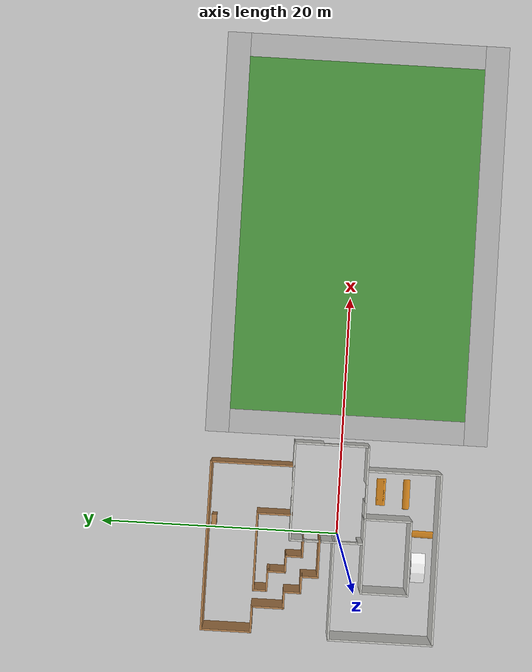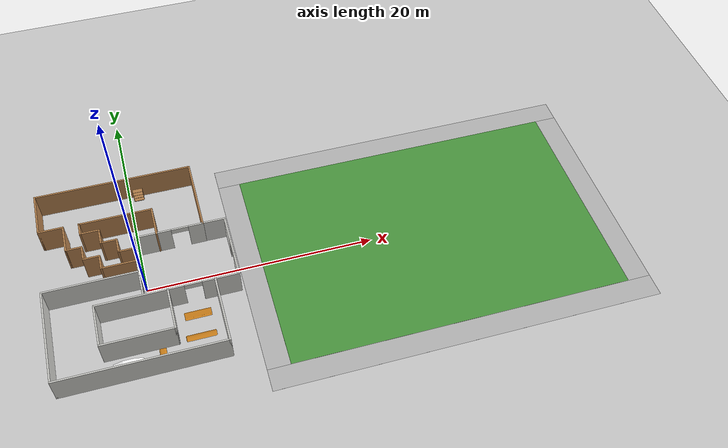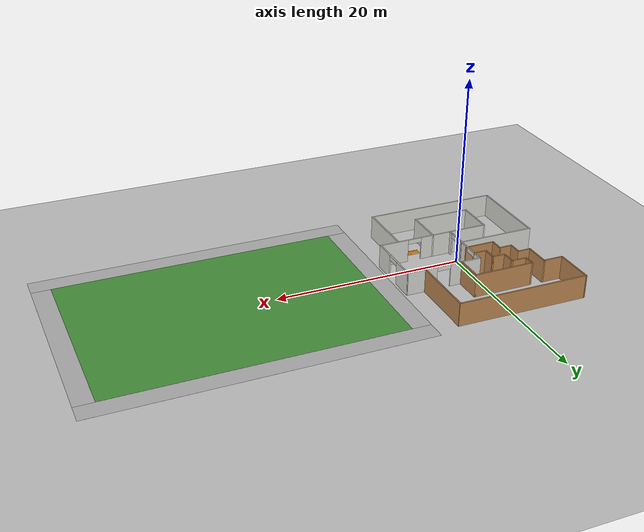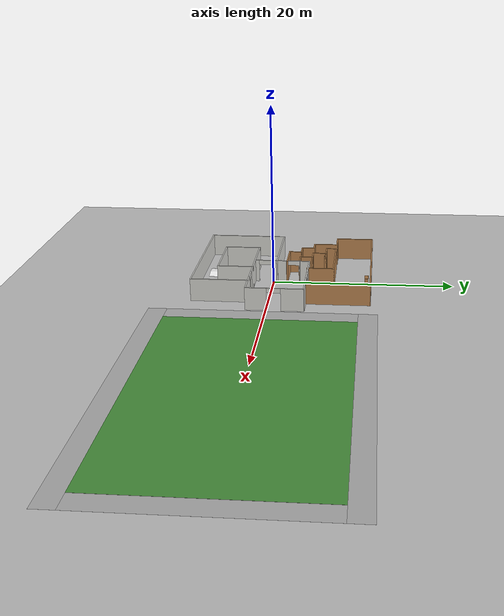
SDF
<sdf version="1.7">
 <world name="default">
  <light name="sun" type="directional">
   <pose>0 0 10 0 -0 0</pose>
   <diffuse>0.8 0.8 0.8 1</diffuse>
   <specular>0.2 0.2 0.2 1</specular>
   <attenuation>
    <range>1000</range>
    <constant>0.9</constant>
    <linear>0.01</linear>
    <quadratic>0.001</quadratic>
   </attenuation>
   <direction>-0.5 0.1 -0.9</direction>
   <spot><inner_angle>0</inner_angle><outer_angle>0</outer_angle><falloff>0</falloff></spot>
  </light>
  <model name="ground_plane">
   <static>1</static>
   <link name="link">
    <collision name="collision">
     <geometry><plane><normal>0 0 1</normal><size>100 100</size></plane></geometry>
     <surface><friction><ode><mu>100</mu><mu2>50</mu2></ode></friction></surface>
    </collision>
    <visual name="visual">
     <cast_shadows>0</cast_shadows>
     <geometry><plane><normal>0 0 1</normal><size>100 100</size></plane></geometry>
     <material>
      <script><uri>file://media/materials/scripts/gazebo.material</uri><name>Gazebo/Grey</name></script>
     </material>
    </visual>
   </link>
  </model>
  <gravity>0 0 -9.8</gravity>
  <magnetic_field>6e-06 2.3e-05 -4.2e-05</magnetic_field>
  <atmosphere type="adiabatic"/>
  <physics type="ode">
   <max_step_size>0.001</max_step_size>
   <real_time_factor>1</real_time_factor>
   <real_time_update_rate>1000</real_time_update_rate>
  </physics>
  <scene><ambient>0.4 0.4 0.4 1</ambient><background>0.7 0.7 0.7 1</background><shadows>1</shadows></scene>
  <audio><device>default</device></audio>
  <spherical_coordinates>
   <surface_model>EARTH_WGS84</surface_model>
   <latitude_deg>0</latitude_deg>
   <longitude_deg>0</longitude_deg>
   <elevation>0</elevation>
   <heading_deg>0</heading_deg>
  </spherical_coordinates>
  <model name="fourth_try">
   <pose>-0.26052 1.36945 0 0 -0 0</pose>
   <link name="Wall_0">
    <pose>2.00344 -3.45856 0 0 -0 0</pose>
    <visual name="Wall_0_Visual_0">
     <pose>-2.3549 0 1.25 0 -0 0</pose>
     <geometry><box><size>7.5402 0.15 2.5</size></box></geometry>
     <material>
      <script><uri>file://media/materials/scripts/gazebo.material</uri><name>Gazebo/CeilingTiled</name></script>
      <ambient>1 1 1 1</ambient>
     </material>
     <meta><layer>0</layer></meta>
    </visual>
    <collision name="Wall_0_Collision_0">
     <geometry><box><size>7.5402 0.15 2.5</size></box></geometry>
     <pose>-2.3549 0 1.25 0 -0 0</pose>
    </collision>
    <visual name="Wall_0_Visual_1">
     <pose>4.5201 0 1.25 0 -0 0</pose>
     <geometry><box><size>3.2098 0.15 2.5</size></box></geometry>
     <material>
      <script><uri>file://media/materials/scripts/gazebo.material</uri><name>Gazebo/CeilingTiled</name></script>
      <ambient>1 1 1 1</ambient>
     </material>
     <meta><layer>0</layer></meta>
    </visual>
    <collision name="Wall_0_Collision_1">
     <geometry><box><size>3.2098 0.15 2.5</size></box></geometry>
     <pose>4.5201 0 1.25 0 -0 0</pose>
    </collision>
    <visual name="Wall_0_Visual_2">
     <pose>2.1652 0 2.25 0 -0 0</pose>
     <geometry><box><size>1.5 0.15 0.5</size></box></geometry>
     <material>
      <script><uri>file://media/materials/scripts/gazebo.material</uri><name>Gazebo/CeilingTiled</name></script>
      <ambient>1 1 1 1</ambient>
     </material>
     <meta><layer>0</layer></meta>
    </visual>
    <collision name="Wall_0_Collision_2">
     <geometry><box><size>1.5 0.15 0.5</size></box></geometry>
     <pose>2.1652 0 2.25 0 -0 0</pose>
    </collision>
   </link>
   <link name="Wall_1">
    <pose>8.05344 -0.408558 0 0 -0 1.5708</pose>
    <visual name="Wall_1_Visual_0">
     <pose>-1.98733 0 1.25 0 -0 0</pose>
     <geometry><box><size>2.27533 0.15 2.5</size></box></geometry>
     <material>
      <script><uri>file://media/materials/scripts/gazebo.material</uri><name>Gazebo/CeilingTiled</name></script>
      <ambient>1 1 1 1</ambient>
     </material>
     <meta><layer>0</layer></meta>
    </visual>
    <collision name="Wall_1_Collision_0">
     <geometry><box><size>2.27533 0.15 2.5</size></box></geometry>
     <pose>-1.98733 0 1.25 0 -0 0</pose>
    </collision>
    <visual name="Wall_1_Visual_1">
     <pose>1.88767 0 1.25 0 -0 0</pose>
     <geometry><box><size>2.47467 0.15 2.5</size></box></geometry>
     <material>
      <script><uri>file://media/materials/scripts/gazebo.material</uri><name>Gazebo/CeilingTiled</name></script>
      <ambient>1 1 1 1</ambient>
     </material>
     <meta><layer>0</layer></meta>
    </visual>
    <collision name="Wall_1_Collision_1">
     <geometry><box><size>2.47467 0.15 2.5</size></box></geometry>
     <pose>1.88767 0 1.25 0 -0 0</pose>
    </collision>
    <visual name="Wall_1_Visual_2">
     <pose>-0.099669 0 2.25 0 -0 0</pose>
     <geometry><box><size>1.5 0.15 0.5</size></box></geometry>
     <material>
      <script><uri>file://media/materials/scripts/gazebo.material</uri><name>Gazebo/CeilingTiled</name></script>
      <ambient>1 1 1 1</ambient>
     </material>
     <meta><layer>0</layer></meta>
    </visual>
    <collision name="Wall_1_Collision_2">
     <geometry><box><size>1.5 0.15 0.5</size></box></geometry>
     <pose>-0.099669 0 2.25 0 -0 0</pose>
    </collision>
   </link>
   <link name="Wall_10">
    <collision name="Wall_10_Collision">
     <geometry><box><size>2.25 0.15 2.5</size></box></geometry>
     <pose>0 0 1.25 0 -0 0</pose>
    </collision>
    <visual name="Wall_10_Visual">
     <pose>0 0 1.25 0 -0 0</pose>
     <geometry><box><size>2.25 0.15 2.5</size></box></geometry>
     <material>
      <script><uri>file://media/materials/scripts/gazebo.material</uri><name>Gazebo/Wood</name></script>
      <ambient>1 1 1 1</ambient>
     </material>
     <meta><layer>0</layer></meta>
    </visual>
    <pose>-6.71872 5.47939 0 0 -0 0</pose>
   </link>
   <link name="Wall_11">
    <collision name="Wall_11_Collision">
     <geometry><box><size>2.75 0.15 2.5</size></box></geometry>
     <pose>0 0 1.25 0 -0 0</pose>
    </collision>
    <visual name="Wall_11_Visual">
     <pose>0 0 1.25 0 -0 0</pose>
     <geometry><box><size>2.75 0.15 2.5</size></box></geometry>
     <material>
      <script><uri>file://media/materials/scripts/gazebo.material</uri><name>Gazebo/Wood</name></script>
      <ambient>1 1 1 1</ambient>
     </material>
     <meta><layer>0</layer></meta>
    </visual>
    <pose>-5.66872 4.17939 0 0 -0 -1.5708</pose>
   </link>
   <link name="Wall_12">
    <collision name="Wall_12_Collision">
     <geometry><box><size>1.5 0.15 2.5</size></box></geometry>
     <pose>0 0 1.25 0 -0 0</pose>
    </collision>
    <visual name="Wall_12_Visual">
     <pose>0 0 1.25 0 -0 0</pose>
     <geometry><box><size>1.5 0.15 2.5</size></box></geometry>
     <material>
      <script><uri>file://media/materials/scripts/gazebo.material</uri><name>Gazebo/Wood</name></script>
      <ambient>1 1 1 1</ambient>
     </material>
     <meta><layer>0</layer></meta>
    </visual>
    <pose>-4.99372 2.87939 0 0 -0 0</pose>
   </link>
   <link name="Wall_14">
    <collision name="Wall_14_Collision">
     <geometry><box><size>1.5 0.15 2.5</size></box></geometry>
     <pose>0 0 1.25 0 -0 0</pose>
    </collision>
    <visual name="Wall_14_Visual">
     <pose>0 0 1.25 0 -0 0</pose>
     <geometry><box><size>1.5 0.15 2.5</size></box></geometry>
     <material>
      <script><uri>file://media/materials/scripts/gazebo.material</uri><name>Gazebo/Wood</name></script>
      <ambient>1 1 1 1</ambient>
     </material>
     <meta><layer>0</layer></meta>
    </visual>
    <pose>-4.31872 2.20439 0 0 -0 -1.5708</pose>
   </link>
   <link name="Wall_15">
    <collision name="Wall_15_Collision">
     <geometry><box><size>1.5 0.15 2.5</size></box></geometry>
     <pose>0 0 1.25 0 -0 0</pose>
    </collision>
    <visual name="Wall_15_Visual">
     <pose>0 0 1.25 0 -0 0</pose>
     <geometry><box><size>1.5 0.15 2.5</size></box></geometry>
     <material>
      <script><uri>file://media/materials/scripts/gazebo.material</uri><name>Gazebo/Wood</name></script>
      <ambient>1 1 1 1</ambient>
     </material>
     <meta><layer>0</layer></meta>
    </visual>
    <pose>-3.64372 1.52939 0 0 -0 0</pose>
   </link>
   <link name="Wall_16">
    <collision name="Wall_16_Collision">
     <geometry><box><size>1.5 0.15 2.5</size></box></geometry>
     <pose>0 0 1.25 0 -0 0</pose>
    </collision>
    <visual name="Wall_16_Visual">
     <pose>0 0 1.25 0 -0 0</pose>
     <geometry><box><size>1.5 0.15 2.5</size></box></geometry>
     <material>
      <script><uri>file://media/materials/scripts/gazebo.material</uri><name>Gazebo/Wood</name></script>
      <ambient>1 1 1 1</ambient>
     </material>
     <meta><layer>0</layer></meta>
    </visual>
    <pose>-2.96872 0.854388 0 0 -0 -1.5708</pose>
   </link>
   <link name="Wall_17">
    <collision name="Wall_17_Collision">
     <geometry><box><size>3.25 0.15 2.5</size></box></geometry>
     <pose>0 0 1.25 0 -0 0</pose>
    </collision>
    <visual name="Wall_17_Visual">
     <pose>0 0 1.25 0 -0 0</pose>
     <geometry><box><size>3.25 0.15 2.5</size></box></geometry>
     <material>
      <script><uri>file://media/materials/scripts/gazebo.material</uri><name>Gazebo/Wood</name></script>
      <ambient>1 1 1 1</ambient>
     </material>
     <meta><layer>0</layer></meta>
    </visual>
    <pose>-1.41872 0.179389 0 0 -0 0</pose>
   </link>
   <link name="Wall_2">
    <collision name="Wall_2_Collision">
     <geometry><box><size>2.08803 0.15 2.5</size></box></geometry>
     <pose>0 0 1.25 0 -0 0</pose>
    </collision>
    <visual name="Wall_2_Visual">
     <pose>0 0 1.25 0 -0 0</pose>
     <geometry><box><size>2.08803 0.15 2.5</size></box></geometry>
     <material>
      <script><uri>file://media/materials/scripts/gazebo.material</uri><name>Gazebo/CeilingTiled</name></script>
      <ambient>1 1 1 1</ambient>
     </material>
     <meta><layer>0</layer></meta>
    </visual>
    <pose>7.08446 2.65024 0 0 -0 3.13252</pose>
   </link>
   <link name="Wall_22">
    <pose>3.06549 2.64144 0 0 -0 3.14159</pose>
    <visual name="Wall_22_Visual_0">
     <pose>-2.44462 0 1.25 0 -0 0</pose>
     <geometry><box><size>1.36077 0.15 2.5</size></box></geometry>
     <material>
      <script><uri>file://media/materials/scripts/gazebo.material</uri><name>Gazebo/CeilingTiled</name></script>
      <ambient>1 1 1 1</ambient>
     </material>
     <meta><layer>0</layer></meta>
    </visual>
    <collision name="Wall_22_Collision_0">
     <geometry><box><size>1.36077 0.15 2.5</size></box></geometry>
     <pose>-2.44462 0 1.25 0 -0 0</pose>
    </collision>
    <visual name="Wall_22_Visual_1">
     <pose>1.43038 0 1.25 0 -0 0</pose>
     <geometry><box><size>3.38923 0.15 2.5</size></box></geometry>
     <material>
      <script><uri>file://media/materials/scripts/gazebo.material</uri><name>Gazebo/CeilingTiled</name></script>
      <ambient>1 1 1 1</ambient>
     </material>
     <meta><layer>0</layer></meta>
    </visual>
    <collision name="Wall_22_Collision_1">
     <geometry><box><size>3.38923 0.15 2.5</size></box></geometry>
     <pose>1.43038 0 1.25 0 -0 0</pose>
    </collision>
    <visual name="Wall_22_Visual_2">
     <pose>-1.01423 0 2.25 0 -0 0</pose>
     <geometry><box><size>1.5 0.15 0.5</size></box></geometry>
     <material>
      <script><uri>file://media/materials/scripts/gazebo.material</uri><name>Gazebo/CeilingTiled</name></script>
      <ambient>1 1 1 1</ambient>
     </material>
     <meta><layer>0</layer></meta>
    </visual>
    <collision name="Wall_22_Collision_2">
     <geometry><box><size>1.5 0.15 0.5</size></box></geometry>
     <pose>-1.01423 0 2.25 0 -0 0</pose>
    </collision>
   </link>
   <link name="Wall_23">
    <collision name="Wall_23_Collision">
     <geometry><box><size>1.25 0.15 2.5</size></box></geometry>
     <pose>0 0 1.25 0 -0 0</pose>
    </collision>
    <visual name="Wall_23_Visual">
     <pose>0 0 1.25 0 -0 0</pose>
     <geometry><box><size>1.25 0.15 2.5</size></box></geometry>
     <material>
      <script><uri>file://media/materials/scripts/gazebo.material</uri><name>Gazebo/CeilingTiled</name></script>
      <ambient>1 1 1 1</ambient>
     </material>
     <meta><layer>0</layer></meta>
    </visual>
    <pose>0.01549 2.09144 0 0 -0 -1.5708</pose>
   </link>
   <link name="Wall_24">
    <collision name="Wall_24_Collision">
     <geometry><box><size>1.5 0.15 2.5</size></box></geometry>
     <pose>0 0 1.25 0 -0 0</pose>
    </collision>
    <visual name="Wall_24_Visual">
     <pose>0 0 1.25 0 -0 0</pose>
     <geometry><box><size>1.5 0.15 2.5</size></box></geometry>
     <material>
      <script><uri>file://media/materials/scripts/gazebo.material</uri><name>Gazebo/Wood</name></script>
      <ambient>1 1 1 1</ambient>
     </material>
     <meta><layer>0</layer></meta>
    </visual>
    <pose>-0.65951 1.54144 0 0 -0 3.14159</pose>
   </link>
   <link name="Wall_25">
    <collision name="Wall_25_Collision">
     <geometry><box><size>1.5 0.15 2.5</size></box></geometry>
     <pose>0 0 1.25 0 -0 0</pose>
    </collision>
    <visual name="Wall_25_Visual">
     <pose>0 0 1.25 0 -0 0</pose>
     <geometry><box><size>1.5 0.15 2.5</size></box></geometry>
     <material>
      <script><uri>file://media/materials/scripts/gazebo.material</uri><name>Gazebo/Wood</name></script>
      <ambient>1 1 1 1</ambient>
     </material>
     <meta><layer>0</layer></meta>
    </visual>
    <pose>-1.33451 2.21644 0 0 -0 1.5708</pose>
   </link>
   <link name="Wall_26">
    <collision name="Wall_26_Collision">
     <geometry><box><size>1.5 0.15 2.5</size></box></geometry>
     <pose>0 0 1.25 0 -0 0</pose>
    </collision>
    <visual name="Wall_26_Visual">
     <pose>0 0 1.25 0 -0 0</pose>
     <geometry><box><size>1.5 0.15 2.5</size></box></geometry>
     <material>
      <script><uri>file://media/materials/scripts/gazebo.material</uri><name>Gazebo/Wood</name></script>
      <ambient>1 1 1 1</ambient>
     </material>
     <meta><layer>0</layer></meta>
    </visual>
    <pose>-2.00951 2.89144 0 0 -0 3.14159</pose>
   </link>
   <link name="Wall_27">
    <collision name="Wall_27_Collision">
     <geometry><box><size>1.5 0.15 2.5</size></box></geometry>
     <pose>0 0 1.25 0 -0 0</pose>
    </collision>
    <visual name="Wall_27_Visual">
     <pose>0 0 1.25 0 -0 0</pose>
     <geometry><box><size>1.5 0.15 2.5</size></box></geometry>
     <material>
      <script><uri>file://media/materials/scripts/gazebo.material</uri><name>Gazebo/Wood</name></script>
      <ambient>1 1 1 1</ambient>
     </material>
     <meta><layer>0</layer></meta>
    </visual>
    <pose>-2.68451 3.56644 0 0 -0 1.5708</pose>
   </link>
   <link name="Wall_28">
    <collision name="Wall_28_Collision">
     <geometry><box><size>0.25 0.15 2.5</size></box></geometry>
     <pose>0 0 1.25 0 -0 0</pose>
    </collision>
    <visual name="Wall_28_Visual">
     <pose>0 0 1.25 0 -0 0</pose>
     <geometry><box><size>0.25 0.15 2.5</size></box></geometry>
     <material>
      <script><uri>file://media/materials/scripts/gazebo.material</uri><name>Gazebo/Wood</name></script>
      <ambient>1 1 1 1</ambient>
     </material>
     <meta><layer>0</layer></meta>
    </visual>
    <pose>-2.68451 4.29144 0 0 -0 1.5708</pose>
   </link>
   <link name="Wall_29">
    <collision name="Wall_29_Collision">
     <geometry><box><size>1.75 0.15 2.5</size></box></geometry>
     <pose>0 0 1.25 0 -0 0</pose>
    </collision>
    <visual name="Wall_29_Visual">
     <pose>0 0 1.25 0 -0 0</pose>
     <geometry><box><size>1.75 0.15 2.5</size></box></geometry>
     <material>
      <script><uri>file://media/materials/scripts/gazebo.material</uri><name>Gazebo/Wood</name></script>
      <ambient>1 1 1 1</ambient>
     </material>
     <meta><layer>0</layer></meta>
    </visual>
    <pose>-3.48451 4.34144 0 0 -0 3.14159</pose>
   </link>
   <link name="Wall_30">
    <collision name="Wall_30_Collision">
     <geometry><box><size>1.25 0.15 2.5</size></box></geometry>
     <pose>0 0 1.25 0 -0 0</pose>
    </collision>
    <visual name="Wall_30_Visual">
     <pose>0 0 1.25 0 -0 0</pose>
     <geometry><box><size>1.25 0.15 2.5</size></box></geometry>
     <material>
      <script><uri>file://media/materials/scripts/gazebo.material</uri><name>Gazebo/Wood</name></script>
      <ambient>1 1 1 1</ambient>
     </material>
     <meta><layer>0</layer></meta>
    </visual>
    <pose>-4.28451 4.89144 0 0 -0 1.5708</pose>
   </link>
   <link name="Wall_31">
    <collision name="Wall_31_Collision">
     <geometry><box><size>6.5 0.15 2.5</size></box></geometry>
     <pose>0 0 1.25 0 -0 0</pose>
    </collision>
    <visual name="Wall_31_Visual">
     <pose>0 0 1.25 0 -0 0</pose>
     <geometry><box><size>6.5 0.15 2.5</size></box></geometry>
     <material>
      <script><uri>file://media/materials/scripts/gazebo.material</uri><name>Gazebo/Wood</name></script>
      <ambient>1 1 1 1</ambient>
     </material>
     <meta><layer>0</layer></meta>
    </visual>
    <pose>-1.10951 5.44144 0 0 -0 0</pose>
   </link>
   <link name="Wall_32">
    <collision name="Wall_32_Collision">
     <geometry><box><size>3 0.15 2.5</size></box></geometry>
     <pose>0 0 1.25 0 -0 0</pose>
    </collision>
    <visual name="Wall_32_Visual">
     <pose>0 0 1.25 0 -0 0</pose>
     <geometry><box><size>3 0.15 2.5</size></box></geometry>
     <material>
      <script><uri>file://media/materials/scripts/gazebo.material</uri><name>Gazebo/Wood</name></script>
      <ambient>1 1 1 1</ambient>
     </material>
     <meta><layer>0</layer></meta>
    </visual>
    <pose>2.06549 4.01644 0 0 -0 -1.5708</pose>
   </link>
   <link name="Wall_36">
    <pose>0.01549 -0.883558 0 0 -0 -1.5708</pose>
    <visual name="Wall_36_Visual_0">
     <pose>-2.46953 0 1.25 0 -0 0</pose>
     <geometry><box><size>0.060938 0.15 2.5</size></box></geometry>
     <material>
      <script><uri>file://media/materials/scripts/gazebo.material</uri><name>Gazebo/CeilingTiled</name></script>
      <ambient>1 1 1 1</ambient>
     </material>
     <meta><layer>0</layer></meta>
    </visual>
    <collision name="Wall_36_Collision_0">
     <geometry><box><size>0.060938 0.15 2.5</size></box></geometry>
     <pose>-2.46953 0 1.25 0 -0 0</pose>
    </collision>
    <visual name="Wall_36_Visual_1">
     <pose>-0.171653 0 1.25 0 -0 0</pose>
     <geometry><box><size>1.53482 0.15 2.5</size></box></geometry>
     <material>
      <script><uri>file://media/materials/scripts/gazebo.material</uri><name>Gazebo/CeilingTiled</name></script>
      <ambient>1 1 1 1</ambient>
     </material>
     <meta><layer>0</layer></meta>
    </visual>
    <collision name="Wall_36_Collision_1">
     <geometry><box><size>1.53482 0.15 2.5</size></box></geometry>
     <pose>-0.171653 0 1.25 0 -0 0</pose>
    </collision>
    <visual name="Wall_36_Visual_2">
     <pose>2.29788 0 1.25 0 -0 0</pose>
     <geometry><box><size>0.404244 0.15 2.5</size></box></geometry>
     <material>
      <script><uri>file://media/materials/scripts/gazebo.material</uri><name>Gazebo/CeilingTiled</name></script>
      <ambient>1 1 1 1</ambient>
     </material>
     <meta><layer>0</layer></meta>
    </visual>
    <collision name="Wall_36_Collision_2">
     <geometry><box><size>0.404244 0.15 2.5</size></box></geometry>
     <pose>2.29788 0 1.25 0 -0 0</pose>
    </collision>
    <visual name="Wall_36_Visual_3">
     <pose>-1.68906 0 2.25 0 -0 0</pose>
     <geometry><box><size>1.5 0.15 0.5</size></box></geometry>
     <material>
      <script><uri>file://media/materials/scripts/gazebo.material</uri><name>Gazebo/CeilingTiled</name></script>
      <ambient>1 1 1 1</ambient>
     </material>
     <meta><layer>0</layer></meta>
    </visual>
    <collision name="Wall_36_Collision_3">
     <geometry><box><size>1.5 0.15 0.5</size></box></geometry>
     <pose>-1.68906 0 2.25 0 -0 0</pose>
    </collision>
    <visual name="Wall_36_Visual_4">
     <pose>1.34576 0 2.25 0 -0 0</pose>
     <geometry><box><size>1.5 0.15 0.5</size></box></geometry>
     <material>
      <script><uri>file://media/materials/scripts/gazebo.material</uri><name>Gazebo/CeilingTiled</name></script>
      <ambient>1 1 1 1</ambient>
     </material>
     <meta><layer>0</layer></meta>
    </visual>
    <collision name="Wall_36_Collision_4">
     <geometry><box><size>1.5 0.15 0.5</size></box></geometry>
     <pose>1.34576 0 2.25 0 -0 0</pose>
    </collision>
   </link>
   <link name="Wall_38">
    <collision name="Wall_38_Collision">
     <geometry><box><size>8.25 0.15 2.5</size></box></geometry>
     <pose>0 0 1.25 0 -0 0</pose>
    </collision>
    <visual name="Wall_38_Visual">
     <pose>0 0 1.25 0 -0 0</pose>
     <geometry><box><size>8.25 0.15 2.5</size></box></geometry>
     <material>
      <script><uri>file://media/materials/scripts/gazebo.material</uri><name>Gazebo/CeilingTiled</name></script>
      <ambient>1 1 1 1</ambient>
     </material>
     <meta><layer>0</layer></meta>
    </visual>
    <pose>-4.00411 -0.979768 0 0 -0 3.14159</pose>
   </link>
   <link name="Wall_4">
    <collision name="Wall_4_Collision">
     <geometry><box><size>7 0.15 2.5</size></box></geometry>
     <pose>0 0 1.25 0 -0 0</pose>
    </collision>
    <visual name="Wall_4_Visual">
     <pose>0 0 1.25 0 -0 0</pose>
     <geometry><box><size>7 0.15 2.5</size></box></geometry>
     <material>
      <script><uri>file://media/materials/scripts/gazebo.material</uri><name>Gazebo/Wood</name></script>
      <ambient>1 1 1 1</ambient>
     </material>
     <meta><layer>0</layer></meta>
    </visual>
    <pose>6.11549 6.06644 0 0 -0 1.5708</pose>
   </link>
   <link name="Wall_40">
    <collision name="Wall_40_Collision">
     <geometry><box><size>8.75 0.15 2.5</size></box></geometry>
     <pose>0 0 1.25 0 -0 0</pose>
    </collision>
    <visual name="Wall_40_Visual">
     <pose>0 0 1.25 0 -0 0</pose>
     <geometry><box><size>8.75 0.15 2.5</size></box></geometry>
     <material>
      <script><uri>file://media/materials/scripts/gazebo.material</uri><name>Gazebo/CeilingTiled</name></script>
      <ambient>1 1 1 1</ambient>
     </material>
     <meta><layer>0</layer></meta>
    </visual>
    <pose>-8.05411 -5.27977 0 0 -0 -1.5708</pose>
   </link>
   <link name="Wall_41">
    <collision name="Wall_41_Collision">
     <geometry><box><size>14.25 0.15 2.5</size></box></geometry>
     <pose>0 0 1.25 0 -0 0</pose>
    </collision>
    <visual name="Wall_41_Visual">
     <pose>0 0 1.25 0 -0 0</pose>
     <geometry><box><size>14.25 0.15 2.5</size></box></geometry>
     <material>
      <script><uri>file://media/materials/scripts/gazebo.material</uri><name>Gazebo/CeilingTiled</name></script>
      <ambient>1 1 1 1</ambient>
     </material>
     <meta><layer>0</layer></meta>
    </visual>
    <pose>-1.00411 -9.57977 0 0 -0 0</pose>
   </link>
   <link name="Wall_42">
    <collision name="Wall_42_Collision">
     <geometry><box><size>6.25 0.15 2.5</size></box></geometry>
     <pose>0 0 1.25 0 -0 0</pose>
    </collision>
    <visual name="Wall_42_Visual">
     <pose>0 0 1.25 0 -0 0</pose>
     <geometry><box><size>6.25 0.15 2.5</size></box></geometry>
     <material>
      <script><uri>file://media/materials/scripts/gazebo.material</uri><name>Gazebo/CeilingTiled</name></script>
      <ambient>1 1 1 1</ambient>
     </material>
     <meta><layer>0</layer></meta>
    </visual>
    <pose>6.04589 -6.52977 0 0 -0 1.5708</pose>
   </link>
   <link name="Wall_44">
    <collision name="Wall_44_Collision">
     <geometry><box><size>4 0.15 2.5</size></box></geometry>
     <pose>0 0 1.25 0 -0 0</pose>
    </collision>
    <visual name="Wall_44_Visual">
     <pose>0 0 1.25 0 -0 0</pose>
     <geometry><box><size>4 0.15 2.5</size></box></geometry>
     <material>
      <script><uri>file://media/materials/scripts/gazebo.material</uri><name>Gazebo/CeilingTiled</name></script>
      <ambient>1 1 1 1</ambient>
     </material>
     <meta><layer>0</layer></meta>
    </visual>
    <pose>-4.04656 -5.38356 0 0 -0 -1.5708</pose>
   </link>
   <link name="Wall_45">
    <collision name="Wall_45_Collision">
     <geometry><box><size>6.25 0.15 2.5</size></box></geometry>
     <pose>0 0 1.25 0 -0 0</pose>
    </collision>
    <visual name="Wall_45_Visual">
     <pose>0 0 1.25 0 -0 0</pose>
     <geometry><box><size>6.25 0.15 2.5</size></box></geometry>
     <material>
      <script><uri>file://media/materials/scripts/gazebo.material</uri><name>Gazebo/CeilingTiled</name></script>
      <ambient>1 1 1 1</ambient>
     </material>
     <meta><layer>0</layer></meta>
    </visual>
    <pose>-0.996563 -7.30856 0 0 -0 0</pose>
   </link>
   <link name="Wall_46">
    <collision name="Wall_46_Collision">
     <geometry><box><size>4 0.15 2.5</size></box></geometry>
     <pose>0 0 1.25 0 -0 0</pose>
    </collision>
    <visual name="Wall_46_Visual">
     <pose>0 0 1.25 0 -0 0</pose>
     <geometry><box><size>4 0.15 2.5</size></box></geometry>
     <material>
      <script><uri>file://media/materials/scripts/gazebo.material</uri><name>Gazebo/CeilingTiled</name></script>
      <ambient>1 1 1 1</ambient>
     </material>
     <meta><layer>0</layer></meta>
    </visual>
    <pose>2.05344 -5.38356 0 0 -0 1.5708</pose>
   </link>
   <link name="Wall_5">
    <collision name="Wall_5_Collision">
     <geometry><box><size>14.0344 0.15 2.5</size></box></geometry>
     <pose>0 0 1.25 0 -0 0</pose>
    </collision>
    <visual name="Wall_5_Visual">
     <pose>0 0 1.25 0 -0 0</pose>
     <geometry><box><size>14.0344 0.15 2.5</size></box></geometry>
     <material>
      <script><uri>file://media/materials/scripts/gazebo.material</uri><name>Gazebo/Wood</name></script>
      <ambient>1 1 1 1</ambient>
     </material>
     <meta><layer>0</layer></meta>
    </visual>
    <pose>-0.826617 9.54421 0 0 -0 3.13652</pose>
   </link>
   <link name="Wall_9">
    <collision name="Wall_9_Collision">
     <geometry><box><size>4.25 0.15 2.5</size></box></geometry>
     <pose>0 0 1.25 0 -0 0</pose>
    </collision>
    <visual name="Wall_9_Visual">
     <pose>0 0 1.25 0 -0 0</pose>
     <geometry><box><size>4.25 0.15 2.5</size></box></geometry>
     <material>
      <script><uri>file://media/materials/scripts/gazebo.material</uri><name>Gazebo/Wood</name></script>
      <ambient>1 1 1 1</ambient>
     </material>
     <meta><layer>0</layer></meta>
    </visual>
    <pose>-7.76872 7.52939 0 0 -0 -1.5708</pose>
   </link>
   <static>1</static>
  </model>
  <model name="bookshelf">
   <static>1</static>
   <link name="link">
    <inertial><mass>1</mass></inertial>
    <collision name="back">
     <pose>0 0.005 0.6 0 -0 0</pose>
     <geometry><box><size>0.9 0.01 1.2</size></box></geometry>
    </collision>
    <visual name="visual1">
     <pose>0 0.005 0.6 0 -0 0</pose>
     <geometry><box><size>0.9 0.01 1.2</size></box></geometry>
     <material>
      <script><uri>file://media/materials/scripts/gazebo.material</uri><name>Gazebo/Wood</name></script>
     </material>
    </visual>
    <collision name="left_side">
     <pose>0.45 -0.195 0.6 0 -0 0</pose>
     <geometry><box><size>0.02 0.4 1.2</size></box></geometry>
    </collision>
    <visual name="visual2">
     <pose>0.45 -0.195 0.6 0 -0 0</pose>
     <geometry><box><size>0.02 0.4 1.2</size></box></geometry>
     <material>
      <script><uri>file://media/materials/scripts/gazebo.material</uri><name>Gazebo/Wood</name></script>
     </material>
    </visual>
    <collision name="right_side">
     <pose>-0.45 -0.195 0.6 0 -0 0</pose>
     <geometry><box><size>0.02 0.4 1.2</size></box></geometry>
    </collision>
    <visual name="visual3">
     <pose>-0.45 -0.195 0.6 0 -0 0</pose>
     <geometry><box><size>0.02 0.4 1.2</size></box></geometry>
     <material>
      <script><uri>file://media/materials/scripts/gazebo.material</uri><name>Gazebo/Wood</name></script>
     </material>
    </visual>
    <collision name="bottom">
     <pose>0 -0.195 0.03 0 -0 0</pose>
     <geometry><box><size>0.88 0.4 0.06</size></box></geometry>
    </collision>
    <visual name="visual4">
     <pose>0 -0.195 0.03 0 -0 0</pose>
     <geometry><box><size>0.88 0.4 0.06</size></box></geometry>
     <material>
      <script><uri>file://media/materials/scripts/gazebo.material</uri><name>Gazebo/Wood</name></script>
     </material>
    </visual>
    <collision name="top">
     <pose>0 -0.195 1.19 0 -0 0</pose>
     <geometry><box><size>0.88 0.4 0.02</size></box></geometry>
    </collision>
    <visual name="visual5">
     <pose>0 -0.195 1.19 0 -0 0</pose>
     <geometry><box><size>0.88 0.4 0.02</size></box></geometry>
     <material>
      <script><uri>file://media/materials/scripts/gazebo.material</uri><name>Gazebo/Wood</name></script>
     </material>
    </visual>
    <collision name="low_shelf">
     <pose>0 -0.195 0.43 0 -0 0</pose>
     <geometry><box><size>0.88 0.4 0.02</size></box></geometry>
    </collision>
    <visual name="visual6">
     <pose>0 -0.195 0.43 0 -0 0</pose>
     <geometry><box><size>0.88 0.4 0.02</size></box></geometry>
     <material>
      <script><uri>file://media/materials/scripts/gazebo.material</uri><name>Gazebo/Wood</name></script>
     </material>
    </visual>
    <collision name="high_shelf">
     <pose>0 -0.195 0.8 0 -0 0</pose>
     <geometry><box><size>0.88 0.4 0.02</size></box></geometry>
    </collision>
    <visual name="visual7">
     <pose>0 -0.195 0.8 0 -0 0</pose>
     <geometry><box><size>0.88 0.4 0.02</size></box></geometry>
     <material>
      <script><uri>file://media/materials/scripts/gazebo.material</uri><name>Gazebo/Wood</name></script>
     </material>
    </visual>
   </link>
   <pose>0.853272 10.6349 0 0 -0 0</pose>
  </model>
  <model name="robocup_3d_field">
   <static>1</static>
   <link name="field">
    <pose>0 0 0.01 0 -0 0</pose>
    <collision name="collision">
     <geometry><plane><normal>0 0 1</normal><size>30 20</size></plane></geometry>
     <surface><friction><ode><mu>100</mu><mu2>50</mu2></ode></friction></surface>
    </collision>
    <visual name="base1">
     <pose>0 11 0.001 0 -0 0</pose>
     <cast_shadows>0</cast_shadows>
     <geometry><plane><normal>0 0 1</normal><size>34 2</size></plane></geometry>
     <material>
      <script>
       <uri>model://robocup_3Dsim_field/materials/scripts/</uri>
       <uri>model://robocup_3Dsim_field/materials/textures/</uri>
       <name>RoboCup/FieldBorder</name>
      </script>
     </material>
    </visual>
    <visual name="base2">
     <pose>0 -11 0.001 0 -0 0</pose>
     <cast_shadows>0</cast_shadows>
     <geometry><plane><normal>0 0 1</normal><size>34 2</size></plane></geometry>
     <material>
      <script>
       <uri>model://robocup_3Dsim_field/materials/scripts/</uri>
       <uri>model://robocup_3Dsim_field/materials/textures/</uri>
       <name>RoboCup/FieldBorder</name>
      </script>
     </material>
    </visual>
    <visual name="base3">
     <pose>16 0 0.001 0 -0 0</pose>
     <cast_shadows>0</cast_shadows>
     <geometry><plane><normal>0 0 1</normal><size>2 20</size></plane></geometry>
     <material>
      <script>
       <uri>model://robocup_3Dsim_field/materials/scripts/</uri>
       <uri>model://robocup_3Dsim_field/materials/textures/</uri>
       <name>RoboCup/FieldBorder</name>
      </script>
     </material>
    </visual>
    <visual name="base4">
     <pose>-16 0 0.001 0 -0 0</pose>
     <cast_shadows>0</cast_shadows>
     <geometry><plane><normal>0 0 1</normal><size>2 20</size></plane></geometry>
     <material>
      <script>
       <uri>model://robocup_3Dsim_field/materials/scripts/</uri>
       <uri>model://robocup_3Dsim_field/materials/textures/</uri>
       <name>RoboCup/FieldBorder</name>
      </script>
     </material>
    </visual>
    <visual name="carpet">
     <cast_shadows>0</cast_shadows>
     <geometry><plane><normal>0 0 1</normal><size>30 20</size></plane></geometry>
     <material>
      <script>
       <uri>model://robocup_3Dsim_field/materials/scripts/</uri>
       <uri>model://robocup_3Dsim_field/materials/textures/</uri>
       <name>RoboCup/Grass</name>
      </script>
     </material>
    </visual>
   </link>
   <pose>25.1199 -0.310879 0 0 -0 0</pose>
  </model>
  <model name="speed_bump_2">
   <static>1</static>
   <link name="link">
    <collision name="collision">
     <geometry><mesh><uri>model://speed_bump_2//Bump_2_short.dae</uri></mesh></geometry>
     <surface><friction><ode><mu>0.9</mu><mu2>0.6</mu2></ode></friction></surface>
    </collision>
    <visual name="visual">
     <geometry><mesh><uri>model://speed_bump_2//Bump_2_short.dae</uri></mesh></geometry>
     <material><ambient>0.8 0.5 0.1 1</ambient><diffuse>0.8 0.5 0.1 1</diffuse></material>
    </visual>
   </link>
   <pose>0.098101 -6.05935 0 0 0 -1.58721</pose>
  </model>
  <model name="speed_bump_1_0">
   <static>1</static>
   <link name="link">
    <collision name="collision">
     <geometry><mesh><uri>model://speed_bump_1//Bump_1_short.dae</uri></mesh></geometry>
     <surface><friction><ode><mu>0.9</mu><mu2>0.6</mu2></ode></friction></surface>
    </collision>
    <visual name="visual">
     <geometry><mesh><uri>model://speed_bump_1//Bump_1_short.dae</uri></mesh></geometry>
     <material><ambient>0.8 0.5 0.1 1</ambient><diffuse>0.8 0.5 0.1 1</diffuse></material>
    </visual>
   </link>
   <pose>2.65416 -3.90659 0 0 -0 0</pose>
  </model>
  <model name="speed_bump_3_0">
   <static>1</static>
   <link name="link">
    <collision name="collision">
     <geometry><mesh><uri>model://speed_bump_3//Bump_3_short.dae</uri></mesh></geometry>
     <surface><friction><ode><mu>0.9</mu><mu2>0.6</mu2></ode></friction></surface>
    </collision>
    <visual name="visual">
     <geometry><mesh><uri>model://speed_bump_3//Bump_3_short.dae</uri></mesh></geometry>
     <material><ambient>0.8 0.5 0.1 1</ambient><diffuse>0.8 0.5 0.1 1</diffuse></material>
    </visual>
   </link>
   <pose>2.40691 -5.97732 0 0 -0 0</pose>
  </model>
  <model name="ramp_1">
   <static>1</static>
   <link name="link">
    <collision name="collision">
     <geometry><mesh><uri>model://ramp_1//ramp_025.dae</uri></mesh></geometry>
     <surface><friction><ode><mu>0.9</mu><mu2>0.6</mu2></ode></friction></surface>
    </collision>
    <visual name="visual">
     <geometry><mesh><uri>model://ramp_1//ramp_025.dae</uri></mesh></geometry>
     <material><ambient>1 1 1 1</ambient><diffuse>1 1 1 1</diffuse></material>
    </visual>
   </link>
   <pose>-3.81159 -7.42784 0 0 -0 0</pose>
  </model>
 </world>
</sdf>
